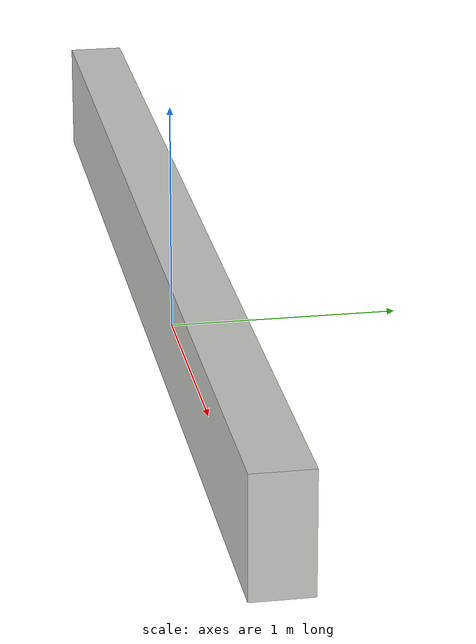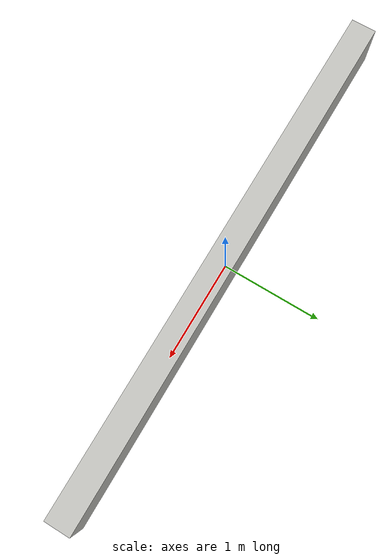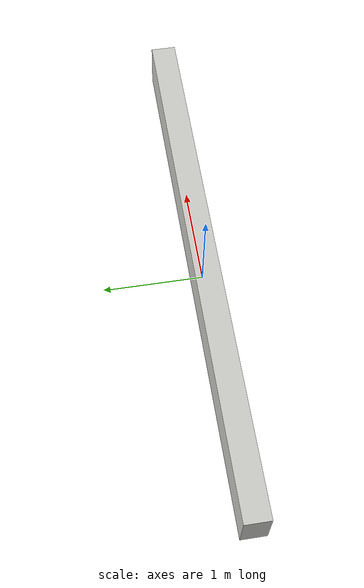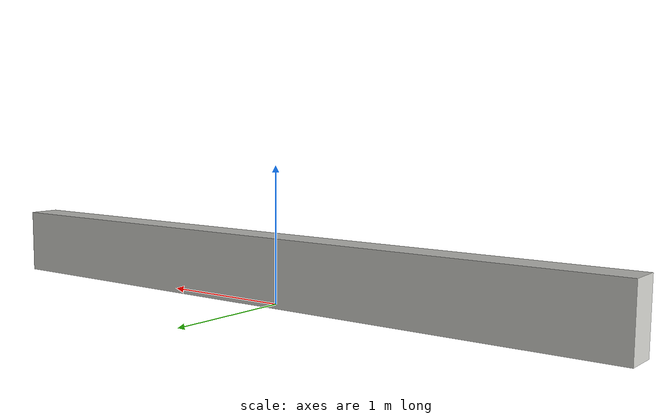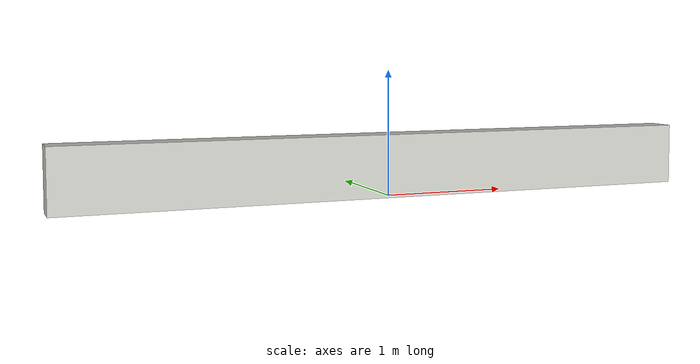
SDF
<?xml version='1.0'?>
<sdf version='1.7'>
  <model name='middle_wall'>
    <pose>0 0 0 0 -0 0</pose>
    <link name='Wall_12'>
      <collision name='Wall_12_Collision'>
        <geometry>
          <box>
            <size>5.25 0.25 0.5</size>
          </box>
        </geometry>
        <pose>0 0 0.25 0 -0 0</pose>
      </collision>
      <visual name='Wall_12_Visual'>
        <pose>0 0 0.25 0 -0 0</pose>
        <geometry>
          <box>
            <size>5.25 0.25 0.5</size>
          </box>
        </geometry>
        <material>
          <script>
            <uri>file://media/materials/scripts/gazebo.material</uri>
            <name>Gazebo/CeilingTiled</name>
          </script>
          <ambient>0.760784 0.662745 0.627451 1</ambient>
        </material>
        <meta>
          <layer>0</layer>
        </meta>
      </visual>
      <pose>0 0 0 0 -0 3.14159</pose>
    </link>
    <static>1</static>
  </model>
</sdf>
